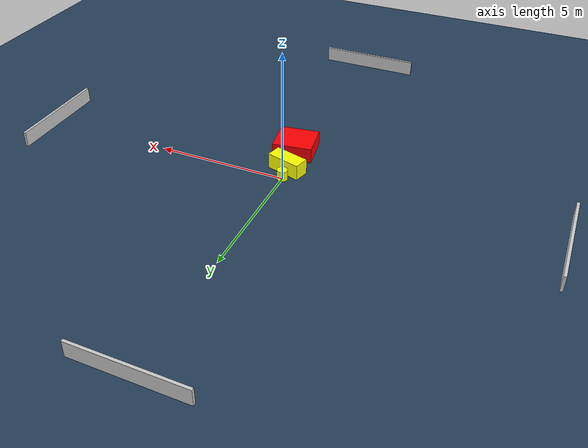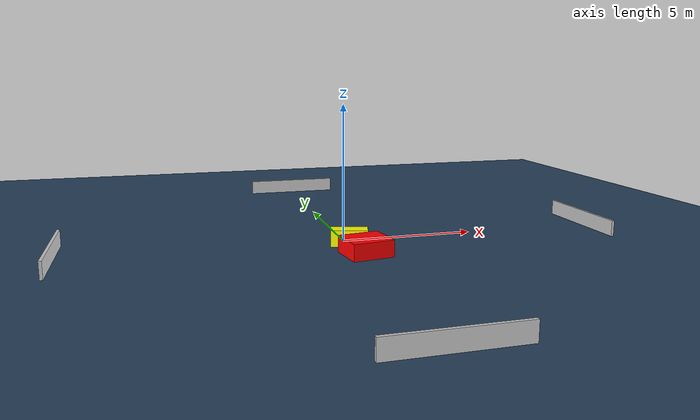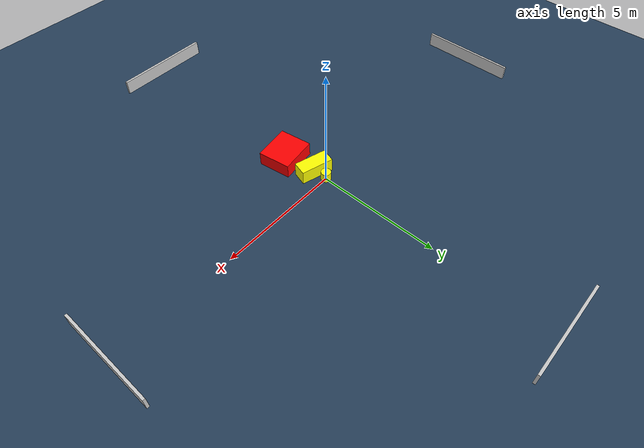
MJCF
<?xml version="1.0" ?>
<mujoco model="generated_environment">
  <option timestep="0.01" integrator="RK4" cone="elliptic"/>
  <default>
    <geom density="1"/>
  </default>
  <asset>
    <texture builtin="gradient" height="3072" name="skybox" rgb1="0.3 0.5 0.7" rgb2="0 0 0" type="skybox" width="512"/>
    <texture builtin="checker" height="300" name="groundplane" rgb1="0.2 0.3 0.4" rgb2="0.1 0.2 0.3" type="2d" width="300"/>
    <material name="groundplane" reflectance="0.2" texrepeat="5 5" texture="groundplane"/>
  </asset>
  <worldbody>
    <light dir="0 0 -1" directional="true" pos="0 0 1.5"/>
    <geom condim="3" friction="0.5 0.005 0.001" material="groundplane" name="floor" pos="0 0 0" size="0 0 0.05" type="plane"/>
    <body name="walls">
      <geom name="wall_1" condim="4" pos="-10.0 0.0 0.3" rgba="0.800000011920929 0.800000011920929 0.800000011920929 1.0" size="0.05 2.0 0.3" type="box"/>
      <geom name="wall_2" condim="4" pos="10.0 0.0 0.3" rgba="0.800000011920929 0.800000011920929 0.800000011920929 1.0" size="0.05 2.0 0.3" type="box"/>
      <geom name="wall_3" condim="4" pos="0.0 -10.0 0.3" rgba="0.800000011920929 0.800000011920929 0.800000011920929 1.0" size="2.0 0.05 0.3" type="box"/>
      <geom name="wall_4" condim="4" pos="0.0 10.0 0.3" rgba="0.800000011920929 0.800000011920929 0.800000011920929 1.0" size="2.0 0.05 0.3" type="box"/>
    </body>
    <body name="robot">
      <joint name="joint_x" type="slide" pos="0 0 0" axis="1 0 0"/>
      <joint name="joint_y" type="slide" pos="0 0 0" axis="0 1 0"/>
      <geom name="robot" type="cylinder" pos="0.0 0.0 0.2" size="0.2 0.2 0.0" mass="5.0" friction="1.0 0.005 0.0001" condim="4" rgba="1.0 1.0 0.0 1.0"/>
    </body>
    <body name="obstacle_1_movable">
      <geom name="obstacle_1_movable" condim="4" pos="0.05549718456803119 -0.5856925940905514 0.3" euler="0 0 344.5687180045349" friction="0.0 0.005 0.001" rgba="1.0 1.0 0.0 1.0" size="0.6657939329649724 0.291609104302967 0.3" type="box" mass="0.1"/>
      <joint type="free"/>
    </body>
    <body name="obstacle_2_static">
      <geom name="obstacle_2_static" condim="4" pos="0.27467047853302323 -1.9218825709415017 0.3" euler="0 0 98.41420392710273" friction="0.0 0.005 0.001" rgba="1.0 0.0 0.0 1.0" size="0.6698453430383151 0.751393089919977 0.3" type="box"/>
    </body>
  </worldbody>
  <actuator>
    <motor name="actuator_x" joint="joint_x" gear="1" ctrlrange="-1 1"/>
    <motor name="actuator_y" joint="joint_y" gear="1" ctrlrange="-1 1"/>
  </actuator>
</mujoco>
